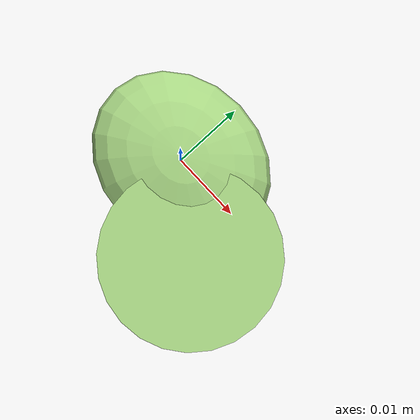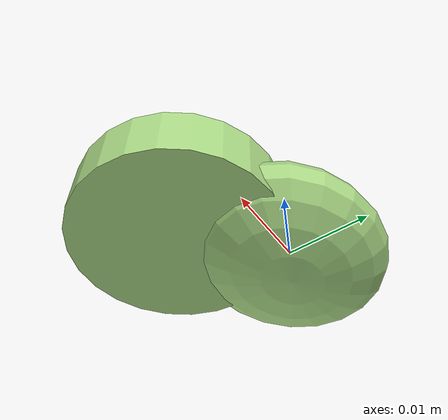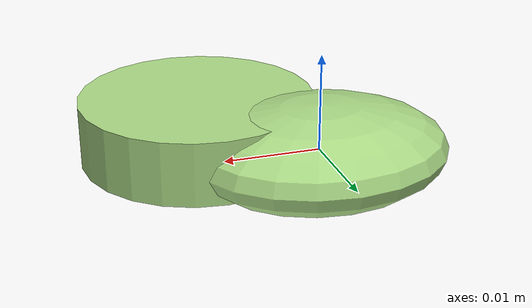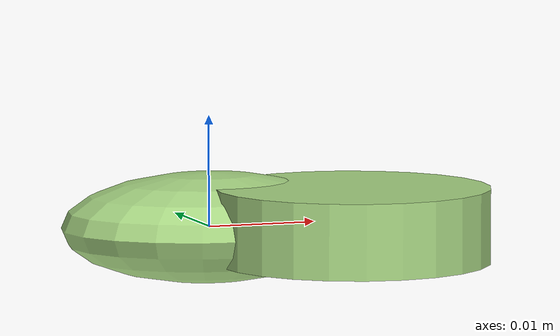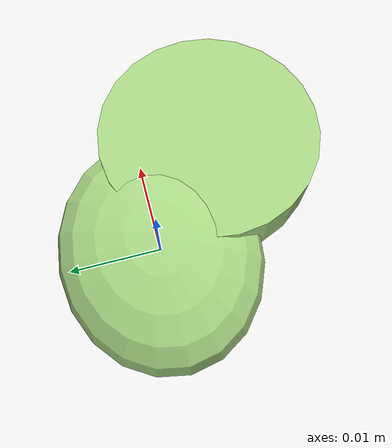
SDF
<?xml version="1.0" ?>
<!-- |    This document was autogenerated by xmacro from data/veggie_template/veggie_base.sdf.xacro  | -->
<!-- |    EDITING THIS FILE BY HAND IS NOT RECOMMENDED                                               | -->
<sdf version="1.8">
	<!-- Parameters -->
	<!-- Base -->
	<!-- Joint 0 -->
	<!-- Link 1 -->
	<!-- Joint 1 -->
	<!-- Link 2 -->
	<!-- Primitives -->
	<!-- All dimensions are half -->
	<!-- Object -->
	<model name="veggie">
		<!-- link0 -->
		<link name="link0">
			<inertial>
				<mass>0.003048363035366901</mass>
				<inertia>
					<ixx>8.983107788490208e-08</ixx>
					<ixy>0</ixy>
					<ixz>0</ixz>
					<iyy>1.2484874583208738e-07</iyy>
					<iyz>0</iyz>
					<izz>1.8586315004672084e-07</izz>
				</inertia>
			</inertial>
			<visual name="link0_visual">
				<pose>0 0 0 0 0 0</pose>
				<geometry>
					<ellipsoid>
						<radii>0.013459088907106183 0.011122510250441583 0.004861368977089241</radii>
					</ellipsoid>
				</geometry>
				<material>
					<ambient>0.659 0.839 0.514 1</ambient>
					<diffuse>0.659 0.839 0.514 1</diffuse>
					<specular>0 0 0 0</specular>
					<emissive>0 0 0 1</emissive>
				</material>
			</visual>
			<collision name="link0_collision">
				<pose>0 0 0 0 0 0 </pose>
				<geometry>
					<ellipsoid>
						<radii>0.013459088907106183 0.011122510250441583 0.004861368977089241</radii>
					</ellipsoid>
				</geometry>
			</collision>
		</link>
		<!-- link1 -->
		<joint name="joint0" type="fixed">
			<pose relative_to="link0">0.010669299824191122 -0.008168246201197332 0.0007368647621553655 0.0 0.0 0.0</pose>
			<parent>link0</parent>
			<child>link1</child>
		</joint>
		<link name="link1">
			<pose relative_to="joint0">0 0 0 0 0 0</pose>
			<inertial>
				<mass>0.0031438334620780906</mass>
				<inertia>
					<ixx>1.3014478594186304e-07</ixx>
					<ixy>0</ixy>
					<ixz>0</ixz>
					<iyy>1.3014478594186304e-07</iyy>
					<iyz>0</iyz>
					<izz>2.3725672767101506e-07</izz>
				</inertia>
			</inertial>
			<visual name="link1_visual">
				<pose>0 0 0 0 0 0</pose>
				<geometry>
					<cylinder>
						<radius>0.012285547060157668</radius>
						<length>0.006630093365269918</length>
					</cylinder>
				</geometry>
				<material>
					<ambient>0.659 0.839 0.514 1</ambient>
					<diffuse>0.659 0.839 0.514 1</diffuse>
					<specular>0 0 0 0</specular>
					<emissive>0 0 0 1</emissive>
				</material>
			</visual>
			<collision name="link1_collision">
				<pose>0 0 0 0 0 0 </pose>
				<geometry>
					<cylinder>
						<radius>0.012285547060157668</radius>
						<length>0.006630093365269918</length>
					</cylinder>
				</geometry>
			</collision>
		</link>
		<!-- link2 -->
	</model>
</sdf>
